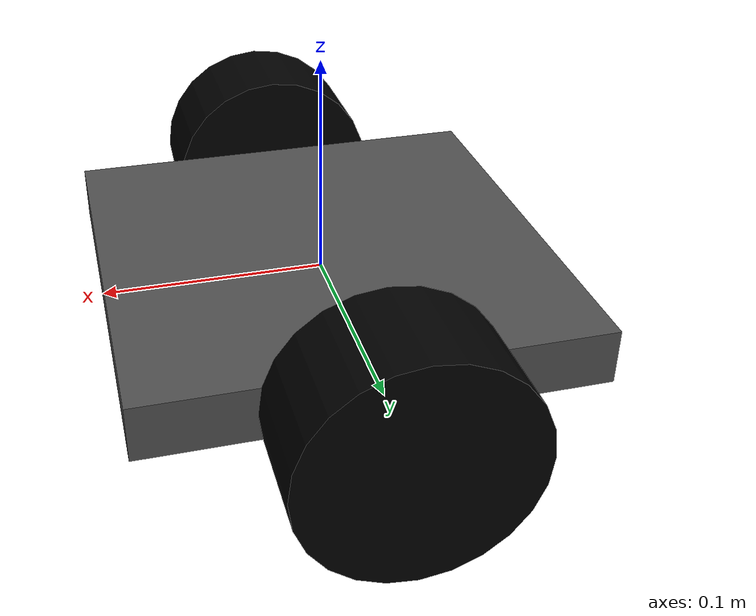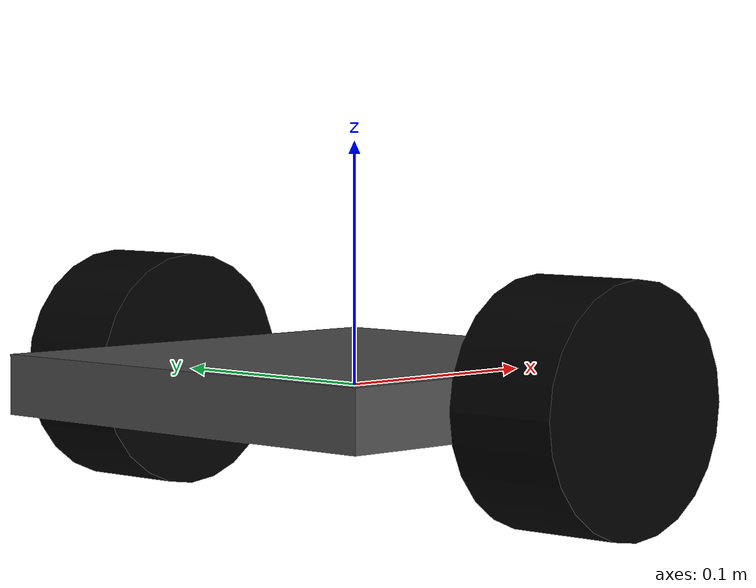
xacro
<?xml version="1.0"?>
<robot xmlns:xacro="http://www.ros.org/wiki/xacro" name="mobile_robot">
    <xacro:include filename="$(find mobilerobot)/urdf/model_robot.gazebo.xacro"/>
    <xacro:property name="length" value="0.05"/>
    <xacro:property name="radius" value="0.05"/>
    <material name="rubber">
        <color rgba="0 0 0 1"/>
    </material>
    <material name="hard_plastic">
        <color rgba="0.3098 0.3098 0.3098 1.0"/>
    </material>

    <xacro:macro name="wheel" params="name location_x location_y location_z">
        <link name="${name}">
            <visual>
                <geometry>
                    <cylinder length="${length}" radius="${radius}"/>
                </geometry>
                <origin xyz="0 0 0" rpy="1.5707 0 0"/>
                <material name="rubber"/>
            </visual>
            <collision>
                <geometry>
                    <cylinder length="${length}" radius="${radius}"/>
                </geometry>
                <origin xyz="0 0 0" rpy="1.5707 0 0"/>
            </collision>
            <inertial>
                <mass value="1"/>
                <inertia ixx="0.0008" iyy="0.0008" izz="0.00125" ixy="0" ixz="0" iyz="0"/>
            </inertial>
        </link>
        <joint name="${name}_to_base_link" type="continuous">
            <axis xyz="0 1 0" rpy="0 0 0"/>
            <parent link="base_link"/>
            <child link="${name}"/>
            <origin xyz="${location_x} ${location_y} ${location_z}" rpy="0 0 0"/>
        </joint>
    </xacro:macro>

    <xacro:macro name="base_link" params="location_x location_y location_z">
        <link name="base_link">
            <origin xyz="${location_x} ${location_y} ${location_z}" rpy="0.0 0.0 0.0"/>
            <visual>
                <geometry>
                    <box size="0.2 0.2 0.025"/>
                </geometry>
                <material name="hard_plastic"/>
            </visual>
            <collision>
                <geometry>
                    <box size="0.2 0.2 0.09"/>
                </geometry>
            </collision>
            <inertial>
                <mass value="3"/>
                <inertia ixx="0.010625" iyy="0.010625" izz="0.02" ixy="0" ixz="0" iyz="0"/>
            </inertial>
        </link>
    </xacro:macro>

    <xacro:base_link location_x="0" location_y="0" location_z="0"/>
    <xacro:wheel name="wheel_right" location_x="0" location_y="-0.125" location_z="0"/>
    <xacro:wheel name="wheel_left" location_x="0" location_y="0.125" location_z="0"/>

</robot>
